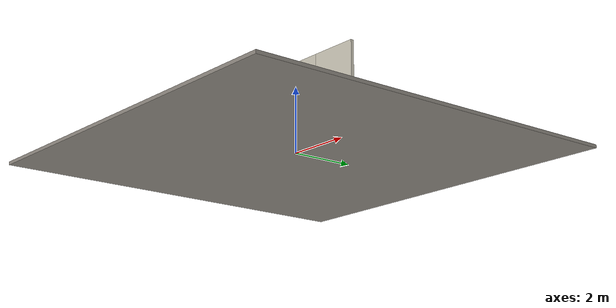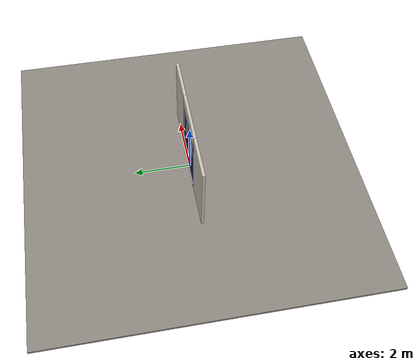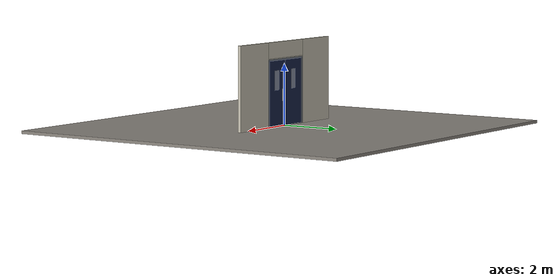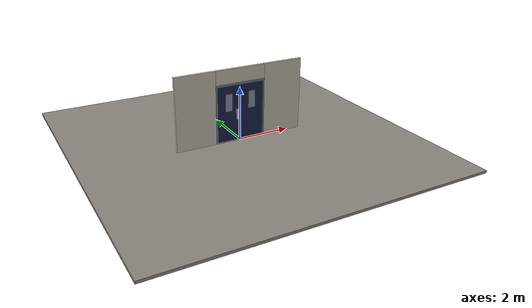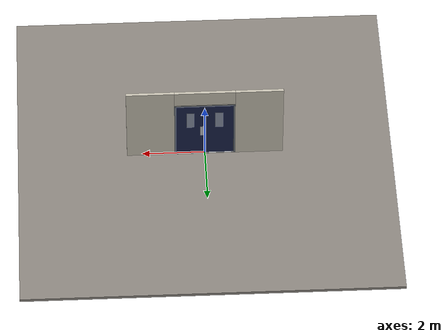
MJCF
<?xml version="1.0" ?>
<mujoco model="db0356_swing_double_minimal">
  <compiler angle="radian" meshdir="../../hardware" texturedir="../../textures" autolimits="true" inertiafromgeom="false"/>
  <option timestep="0.002" integrator="implicitfast" cone="elliptic" impratio="10" noslip_iterations="3">
    <flag multiccd="enable"/>
  </option>
  <size memory="16M"/>
  <default>
    <geom condim="4" solref="0.005 1" solimp="0.95 0.99 0.001"/>
    <joint solreflimit="0.005 1" solimplimit="0.95 0.99 0.001"/>
    <tendon solreflimit="0.005 1"/>
    <equality solref="0.002 1"/>
  </default>
  <visual>
    <headlight ambient="0.4 0.4 0.4" diffuse="0.7 0.7 0.7" specular="0.2 0.2 0.2"/>
    <quality shadowsize="4096"/>
    <map znear="0.01" zfar="60"/>
  </visual>
  <asset>
    <material name="mat_floor" rgba="0.55 0.53 0.5 1" specular="0.2" shininess="0.15" reflectance="0"/>
    <material name="mat_wall" rgba="0.78 0.76 0.7 1" specular="0.2" shininess="0.1" reflectance="0"/>
    <material name="mat_leaf_a" rgba="0.09 0.13 0.28 1" specular="0.23" shininess="0.45" reflectance="0.02"/>
    <material name="mat_glass" rgba="0.9 0.93 0.95 0.6" specular="0.2" shininess="0.5" reflectance="0.1"/>
    <material name="mat_hinge" rgba="0.65 0.66 0.68 1" specular="0.74" shininess="0.5" reflectance="0.36"/>
    <material name="mat_op_stainless" rgba="0.75 0.76 0.77 1" specular="0.8" shininess="0.65" reflectance="0.4"/>
    <material name="mat_closer" rgba="0.22 0.17 0.13 1" specular="0.8" shininess="0.6" reflectance="0.4"/>
    <material name="mat_kick" rgba="0.75 0.76 0.77 1" specular="0.8" shininess="0.65" reflectance="0.4"/>
    <material name="mat_leaf_b" rgba="0.09 0.13 0.28 1" specular="0.23" shininess="0.45" reflectance="0.02"/>
    <material name="mat_frame" rgba="0.45 0.48 0.52 1" specular="0.32" shininess="0.6" reflectance="0.08"/>
    <material name="mat_threshold" rgba="0.8 0.81 0.83 1" specular="0.8" shininess="0.6" reflectance="0.4"/>
    <texture name="skybox" type="skybox" builtin="gradient" rgb1="0.6 0.7 0.85" rgb2="0.9 0.92 0.95" width="256" height="256"/>
  </asset>
  <worldbody>
    <light name="sun" pos="1.5 -2.5 4" dir="-0.3 0.5 -0.8" directional="true" diffuse="0.8 0.8 0.8" specular="0.3 0.3 0.3" castshadow="true"/>
    <light name="fill" pos="-1.5 2.5 3" dir="0.3 -0.5 -0.7" directional="true" diffuse="0.35 0.35 0.4" castshadow="false"/>
    <camera name="robot_view" pos="0 -2.637812 1.812087" xyaxes="1 0 0 0 0.26963 0.962964" fovy="52"/>
    <camera name="far_view" pos="0 2.637812 1.812087" xyaxes="-1 0 0 0 -0.26963 0.962964" fovy="52"/>
    <camera name="iso" pos="-2.004737 -2.215762 2.234138" xyaxes="0.741536 -0.670913 0 0.242917 0.268487 0.932151" fovy="46"/>
    <camera name="detail_handle" pos="0.2845 -0.8 1.296" xyaxes="0.97561 0.219512 0 -0.070934 0.315262 0.94635" fovy="38"/>
    <geom name="floor" type="box" size="6 6 0.05" pos="0 0 -0.05" material="mat_floor" group="0" contype="1" conaffinity="1" friction="0.8 0.005 0.0001" density="2400"/>
    <geom name="wall_left" type="box" size="0.76575 0.05 1.3735" pos="-1.73425 0 1.3735" material="mat_wall" group="0" contype="1" conaffinity="1" friction="0.6 0.005 0.0001" density="800"/>
    <geom name="wall_right" type="box" size="0.76575 0.05 1.3735" pos="1.73425 0 1.3735" material="mat_wall" group="0" contype="1" conaffinity="1" friction="0.6 0.005 0.0001" density="800"/>
    <geom name="wall_header" type="box" size="0.9685 0.05 0.26" pos="0 0 2.487" material="mat_wall" group="0" contype="1" conaffinity="1" friction="0.6 0.005 0.0001" density="800"/>
    <geom name="jamb_l" type="box" size="0.025 0.05 1.0735" pos="-0.9435 0 1.0735" material="mat_frame" group="0" contype="1" conaffinity="1" friction="0.6 0.005 0.0001" density="300"/>
    <geom name="jamb_r" type="box" size="0.025 0.05 1.0735" pos="0.9435 0 1.0735" material="mat_frame" group="0" contype="1" conaffinity="1" friction="0.6 0.005 0.0001" density="300"/>
    <geom name="jamb_head" type="box" size="0.9685 0.05 0.025" pos="0 0 2.172" material="mat_frame" group="0" contype="1" conaffinity="1" friction="0.6 0.005 0.0001" density="300"/>
    <geom name="head_stud" type="box" size="0.9685 0.05 0.015" pos="0 0 2.212" material="mat_wall" group="0" contype="1" conaffinity="1" friction="0.6 0.005 0.0001" density="500"/>
    <geom name="threshold" type="box" size="0.9685 0.05 0.0065" pos="0 0 0.0065" material="mat_threshold" group="0" contype="1" conaffinity="1" friction="0.5 0.005 0.0001" density="2700"/>
    <site name="approach_point" pos="0 -1.5 0" quat="1 0 0 0" size="0.05" rgba="0.2 0.9 0.2 0.5" group="4"/>
    <site name="goal_point" pos="0 1.5 0" quat="1 0 0 0" size="0.05" rgba="0.2 0.9 0.2 0.5" group="4"/>
    <site name="door_plane_center" pos="0 0 1.0735" quat="1 0 0 0" size="0.02" rgba="0.2 0.9 0.2 0.5" group="4"/>
    <site name="approach_point_2" pos="0 -1.5 0" quat="1 0 0 0" size="0.05" rgba="0.2 0.9 0.2 0.5" group="4"/>
    <site name="goal_point_2" pos="0 1.5 0" quat="1 0 0 0" size="0.05" rgba="0.2 0.9 0.2 0.5" group="4"/>
    <site name="door_plane_center_2" pos="0 0 1.0735" quat="1 0 0 0" size="0.02" rgba="0.2 0.9 0.2 0.5" group="4"/>
    <site name="approach_point_3" pos="0 -1.5 0" quat="1 0 0 0" size="0.05" rgba="0.2 0.9 0.2 0.5" group="4"/>
    <site name="goal_point_3" pos="0 1.5 0" quat="1 0 0 0" size="0.05" rgba="0.2 0.9 0.2 0.5" group="4"/>
    <site name="door_plane_center_3" pos="0 0 1.0735" quat="1 0 0 0" size="0.02" rgba="0.2 0.9 0.2 0.5" group="4"/>
    <body name="leaf_a" pos="-0.9185 0 0">
      <inertial pos="0.464052 -0.000262 1.079334" mass="48.846054" quat="0.499897 0.500527 0.499451 -0.500124" diaginertia="3.438223089 18.202934951 21.625011866"/>
      <joint name="leaf_a_hinge" type="hinge" axis="0 0 1" pos="0.003 0.029 0" limited="true" range="0 1.570796" damping="12.268966" frictionloss="0.215839" stiffness="11.567381" springref="-1.882881" armature="0.02"/>
      <geom name="leaf_a_slab" type="box" size="0.457 0.022 1.063" pos="0.46 0 1.08" material="mat_leaf_a" group="0" contype="1" conaffinity="1" friction="0.4 0.005 0.0001" density="1"/>
      <geom name="leaf_a_glass_0" type="box" size="0.125 0.0228 0.3189" pos="0.46 0 1.5052" material="mat_glass" group="1" contype="0" conaffinity="0" density="1"/>
      <geom name="leaf_a_push_plate_n" type="box" size="0.05 0.0008 0.2" pos="0.812 -0.0228 1.016" material="mat_op_stainless" group="1" contype="0" conaffinity="0" density="7900"/>
      <site name="leaf_a_push_plate_push_n" pos="0.812 -0.022 1.016" quat="1 0 0 0" size="0.012" rgba="0.2 0.9 0.2 0.5" group="4"/>
      <site name="leaf_a_edge_mid" pos="0.917 0 1.063" quat="1 0 0 0" size="0.02" rgba="0.2 0.9 0.2 0.5" group="4"/>
    </body>
    <body name="leaf_b" pos="0.9185 0 0">
      <inertial pos="-0.464052 0.000262 1.079334" mass="48.846054" quat="-0.499451 -0.500124 -0.499897 0.500527" diaginertia="3.438223089 18.202934951 21.625011866"/>
      <joint name="leaf_b_hinge" type="hinge" axis="0 0 1" pos="-0.003 -0.029 0" limited="true" range="0 1.570796" damping="12.268966" frictionloss="0.215839" stiffness="11.567381" springref="-1.882881" armature="0.02"/>
      <geom name="leaf_b_slab" type="box" size="0.457 0.022 1.063" pos="-0.46 0 1.08" material="mat_leaf_b" group="0" contype="1" conaffinity="1" friction="0.4 0.005 0.0001" density="1"/>
      <geom name="leaf_b_glass_0" type="box" size="0.125 0.0228 0.3189" pos="-0.46 0 1.5052" material="mat_glass" group="1" contype="0" conaffinity="0" density="1"/>
      <geom name="leaf_b_push_plate_p" type="box" size="0.05 0.0008 0.2" pos="-0.812 0.0228 1.016" material="mat_op_stainless" group="1" contype="0" conaffinity="0" density="7900"/>
      <site name="leaf_b_push_plate_push_p" pos="-0.812 0.022 1.016" quat="1 0 0 0" size="0.012" rgba="0.2 0.9 0.2 0.5" group="4"/>
      <site name="leaf_b_edge_mid" pos="-0.917 0 1.063" quat="1 0 0 0" size="0.02" rgba="0.2 0.9 0.2 0.5" group="4"/>
    </body>
  </worldbody>
  <sensor>
    <jointpos name="leaf_a_hinge_pos" joint="leaf_a_hinge"/>
    <jointvel name="leaf_a_hinge_vel" joint="leaf_a_hinge"/>
    <jointpos name="leaf_b_hinge_pos" joint="leaf_b_hinge"/>
    <jointvel name="leaf_b_hinge_vel" joint="leaf_b_hinge"/>
  </sensor>
</mujoco>
